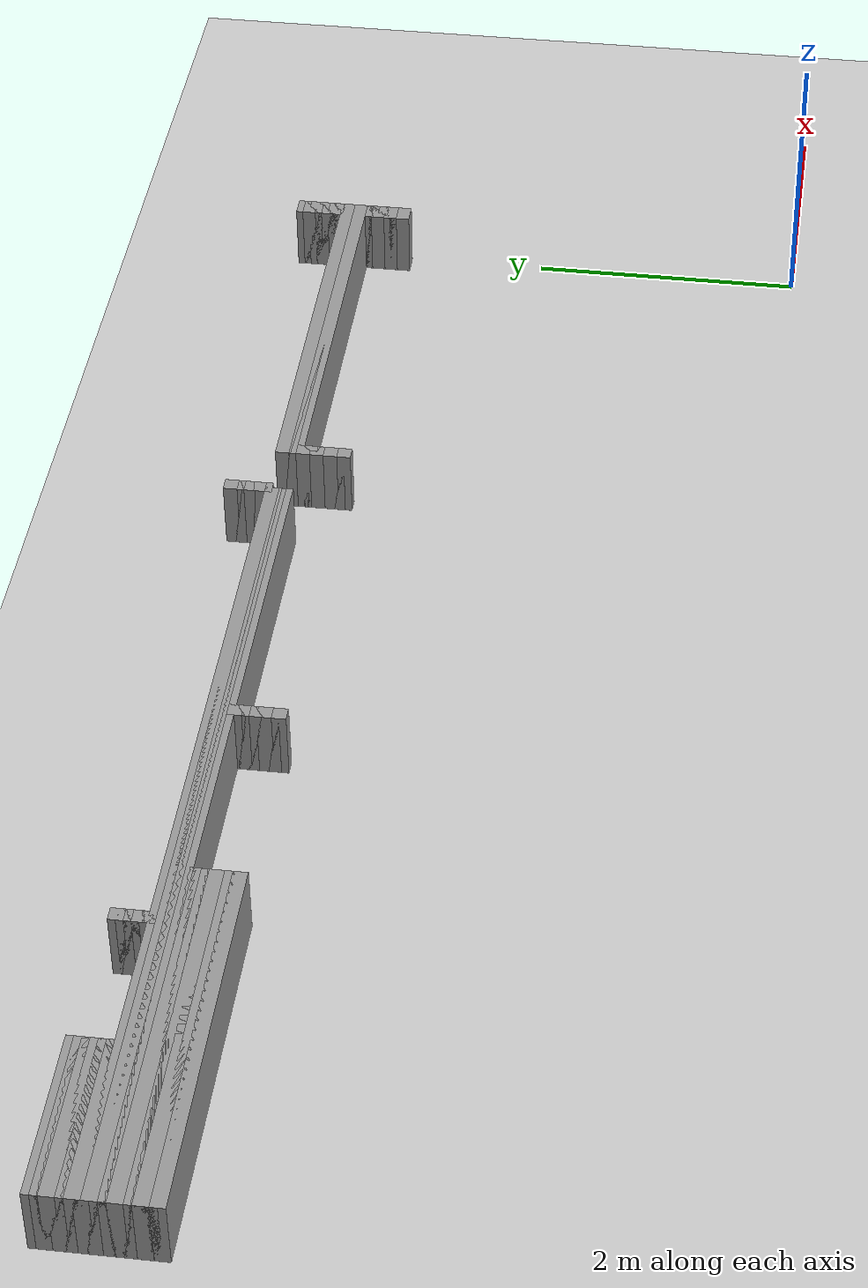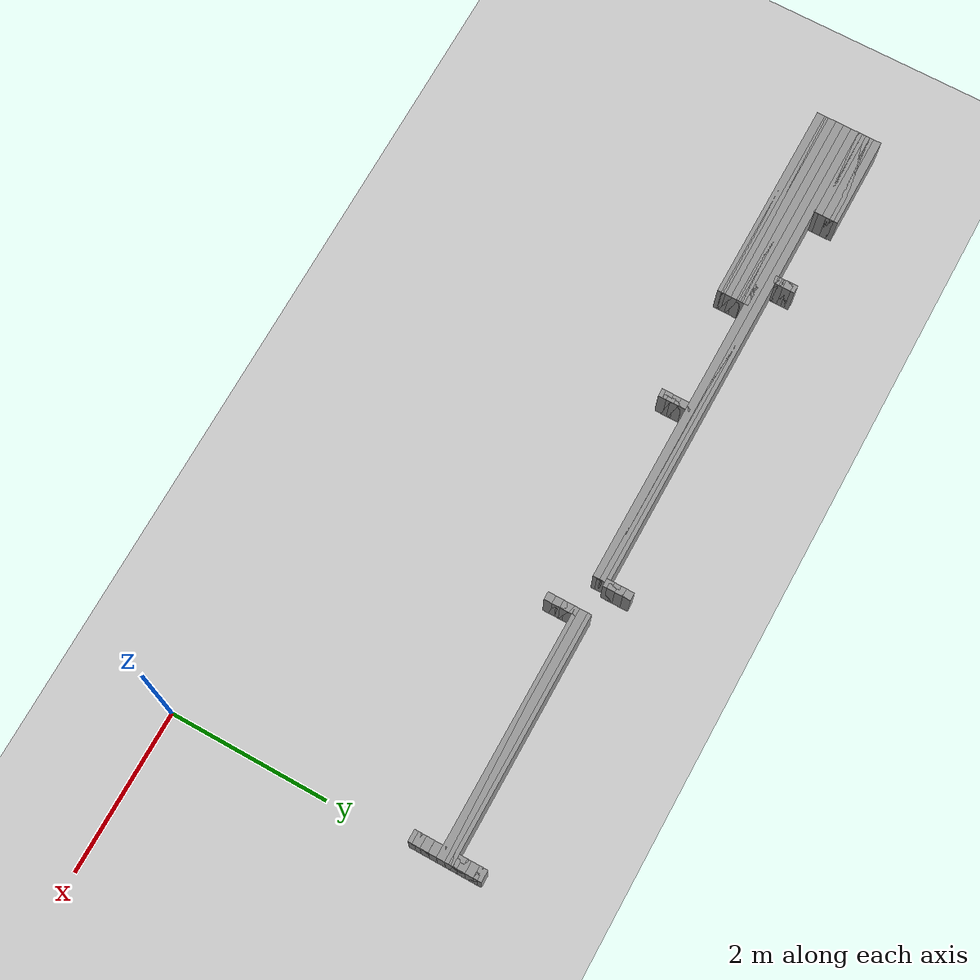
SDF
<sdf version="1.6">
 <world name="GridMap">
  <include><uri>model://sun</uri></include>
  <include><uri>model://ground_plane</uri></include>
  <model name="GridMap">
   <link name="Wall_(1.5,62.0)">
    <collision name="Wall_(1.5,62.0)_Collision">
     <geometry><box><size>0.15000000000000002 0.1 0.5</size></box></geometry>
     <pose>-0.07500000000000001 3.1 0.25 0 -0 0</pose>
    </collision>
    <inertial>
     <mass>0.5</mass>
     <pose>0 0.01 0 0 0 0</pose>
     <inertia><ixx>0.004</ixx><ixy>0.001</ixy><ixz>0</ixz><iyy>0.006</iyy><iyz>0</iyz><izz>0.007</izz></inertia>
    </inertial>
    <visual name="Wall_(1.5,62.0)_Visual">
     <geometry><box><size>0.15000000000000002 0.1 0.5</size></box></geometry>
     <pose>-0.07500000000000001 3.1 0.25 0 -0 0</pose>
     <material>
      <script><uri>file://media/materials/scripts/gazebo.material</uri><name>Gazebo/Grey</name></script>
      <ambient>1 1 1 1</ambient>
     </material>
     <meta><layer>0</layer></meta>
    </visual>
   </link>
   <link name="Wall_(62.0,62.0)">
    <collision name="Wall_(62.0,62.0)_Collision">
     <geometry><box><size>0.1 0.1 0.5</size></box></geometry>
     <pose>-3.1 3.1 0.25 0 -0 0</pose>
    </collision>
    <inertial>
     <mass>0.5</mass>
     <pose>0 0.01 0 0 0 0</pose>
     <inertia><ixx>0.004</ixx><ixy>0.001</ixy><ixz>0</ixz><iyy>0.006</iyy><iyz>0</iyz><izz>0.007</izz></inertia>
    </inertial>
    <visual name="Wall_(62.0,62.0)_Visual">
     <geometry><box><size>0.1 0.1 0.5</size></box></geometry>
     <pose>-3.1 3.1 0.25 0 -0 0</pose>
     <material>
      <script><uri>file://media/materials/scripts/gazebo.material</uri><name>Gazebo/Grey</name></script>
      <ambient>1 1 1 1</ambient>
     </material>
     <meta><layer>0</layer></meta>
    </visual>
   </link>
   <link name="Wall_(117.0,62.0)">
    <collision name="Wall_(117.0,62.0)_Collision">
     <geometry><box><size>0.1 0.1 0.5</size></box></geometry>
     <pose>-5.8500000000000005 3.1 0.25 0 -0 0</pose>
    </collision>
    <inertial>
     <mass>0.5</mass>
     <pose>0 0.01 0 0 0 0</pose>
     <inertia><ixx>0.004</ixx><ixy>0.001</ixy><ixz>0</ixz><iyy>0.006</iyy><iyz>0</iyz><izz>0.007</izz></inertia>
    </inertial>
    <visual name="Wall_(117.0,62.0)_Visual">
     <geometry><box><size>0.1 0.1 0.5</size></box></geometry>
     <pose>-5.8500000000000005 3.1 0.25 0 -0 0</pose>
     <material>
      <script><uri>file://media/materials/scripts/gazebo.material</uri><name>Gazebo/Grey</name></script>
      <ambient>1 1 1 1</ambient>
     </material>
     <meta><layer>0</layer></meta>
    </visual>
   </link>
   <link name="Wall_(172.5,62.0)">
    <collision name="Wall_(172.5,62.0)_Collision">
     <geometry><box><size>2.6500000000000004 0.1 0.5</size></box></geometry>
     <pose>-8.625 3.1 0.25 0 -0 0</pose>
    </collision>
    <inertial>
     <mass>0.5</mass>
     <pose>0 0.01 0 0 0 0</pose>
     <inertia><ixx>0.004</ixx><ixy>0.001</ixy><ixz>0</ixz><iyy>0.006</iyy><iyz>0</iyz><izz>0.007</izz></inertia>
    </inertial>
    <visual name="Wall_(172.5,62.0)_Visual">
     <geometry><box><size>2.6500000000000004 0.1 0.5</size></box></geometry>
     <pose>-8.625 3.1 0.25 0 -0 0</pose>
     <material>
      <script><uri>file://media/materials/scripts/gazebo.material</uri><name>Gazebo/Grey</name></script>
      <ambient>1 1 1 1</ambient>
     </material>
     <meta><layer>0</layer></meta>
    </visual>
   </link>
   <link name="Wall_(1.5,63.0)">
    <collision name="Wall_(1.5,63.0)_Collision">
     <geometry><box><size>0.15000000000000002 0.1 0.5</size></box></geometry>
     <pose>-0.07500000000000001 3.1500000000000004 0.25 0 -0 0</pose>
    </collision>
    <inertial>
     <mass>0.5</mass>
     <pose>0 0.01 0 0 0 0</pose>
     <inertia><ixx>0.004</ixx><ixy>0.001</ixy><ixz>0</ixz><iyy>0.006</iyy><iyz>0</iyz><izz>0.007</izz></inertia>
    </inertial>
    <visual name="Wall_(1.5,63.0)_Visual">
     <geometry><box><size>0.15000000000000002 0.1 0.5</size></box></geometry>
     <pose>-0.07500000000000001 3.1500000000000004 0.25 0 -0 0</pose>
     <material>
      <script><uri>file://media/materials/scripts/gazebo.material</uri><name>Gazebo/Grey</name></script>
      <ambient>1 1 1 1</ambient>
     </material>
     <meta><layer>0</layer></meta>
    </visual>
   </link>
   <link name="Wall_(62.0,63.0)">
    <collision name="Wall_(62.0,63.0)_Collision">
     <geometry><box><size>0.1 0.1 0.5</size></box></geometry>
     <pose>-3.1 3.1500000000000004 0.25 0 -0 0</pose>
    </collision>
    <inertial>
     <mass>0.5</mass>
     <pose>0 0.01 0 0 0 0</pose>
     <inertia><ixx>0.004</ixx><ixy>0.001</ixy><ixz>0</ixz><iyy>0.006</iyy><iyz>0</iyz><izz>0.007</izz></inertia>
    </inertial>
    <visual name="Wall_(62.0,63.0)_Visual">
     <geometry><box><size>0.1 0.1 0.5</size></box></geometry>
     <pose>-3.1 3.1500000000000004 0.25 0 -0 0</pose>
     <material>
      <script><uri>file://media/materials/scripts/gazebo.material</uri><name>Gazebo/Grey</name></script>
      <ambient>1 1 1 1</ambient>
     </material>
     <meta><layer>0</layer></meta>
    </visual>
   </link>
   <link name="Wall_(117.0,63.0)">
    <collision name="Wall_(117.0,63.0)_Collision">
     <geometry><box><size>0.1 0.1 0.5</size></box></geometry>
     <pose>-5.8500000000000005 3.1500000000000004 0.25 0 -0 0</pose>
    </collision>
    <inertial>
     <mass>0.5</mass>
     <pose>0 0.01 0 0 0 0</pose>
     <inertia><ixx>0.004</ixx><ixy>0.001</ixy><ixz>0</ixz><iyy>0.006</iyy><iyz>0</iyz><izz>0.007</izz></inertia>
    </inertial>
    <visual name="Wall_(117.0,63.0)_Visual">
     <geometry><box><size>0.1 0.1 0.5</size></box></geometry>
     <pose>-5.8500000000000005 3.1500000000000004 0.25 0 -0 0</pose>
     <material>
      <script><uri>file://media/materials/scripts/gazebo.material</uri><name>Gazebo/Grey</name></script>
      <ambient>1 1 1 1</ambient>
     </material>
     <meta><layer>0</layer></meta>
    </visual>
   </link>
   <link name="Wall_(172.5,63.0)">
    <collision name="Wall_(172.5,63.0)_Collision">
     <geometry><box><size>2.6500000000000004 0.1 0.5</size></box></geometry>
     <pose>-8.625 3.1500000000000004 0.25 0 -0 0</pose>
    </collision>
    <inertial>
     <mass>0.5</mass>
     <pose>0 0.01 0 0 0 0</pose>
     <inertia><ixx>0.004</ixx><ixy>0.001</ixy><ixz>0</ixz><iyy>0.006</iyy><iyz>0</iyz><izz>0.007</izz></inertia>
    </inertial>
    <visual name="Wall_(172.5,63.0)_Visual">
     <geometry><box><size>2.6500000000000004 0.1 0.5</size></box></geometry>
     <pose>-8.625 3.1500000000000004 0.25 0 -0 0</pose>
     <material>
      <script><uri>file://media/materials/scripts/gazebo.material</uri><name>Gazebo/Grey</name></script>
      <ambient>1 1 1 1</ambient>
     </material>
     <meta><layer>0</layer></meta>
    </visual>
   </link>
   <link name="Wall_(1.5,64.0)">
    <collision name="Wall_(1.5,64.0)_Collision">
     <geometry><box><size>0.15000000000000002 0.1 0.5</size></box></geometry>
     <pose>-0.07500000000000001 3.2 0.25 0 -0 0</pose>
    </collision>
    <inertial>
     <mass>0.5</mass>
     <pose>0 0.01 0 0 0 0</pose>
     <inertia><ixx>0.004</ixx><ixy>0.001</ixy><ixz>0</ixz><iyy>0.006</iyy><iyz>0</iyz><izz>0.007</izz></inertia>
    </inertial>
    <visual name="Wall_(1.5,64.0)_Visual">
     <geometry><box><size>0.15000000000000002 0.1 0.5</size></box></geometry>
     <pose>-0.07500000000000001 3.2 0.25 0 -0 0</pose>
     <material>
      <script><uri>file://media/materials/scripts/gazebo.material</uri><name>Gazebo/Grey</name></script>
      <ambient>1 1 1 1</ambient>
     </material>
     <meta><layer>0</layer></meta>
    </visual>
   </link>
   <link name="Wall_(62.0,64.0)">
    <collision name="Wall_(62.0,64.0)_Collision">
     <geometry><box><size>0.1 0.1 0.5</size></box></geometry>
     <pose>-3.1 3.2 0.25 0 -0 0</pose>
    </collision>
    <inertial>
     <mass>0.5</mass>
     <pose>0 0.01 0 0 0 0</pose>
     <inertia><ixx>0.004</ixx><ixy>0.001</ixy><ixz>0</ixz><iyy>0.006</iyy><iyz>0</iyz><izz>0.007</izz></inertia>
    </inertial>
    <visual name="Wall_(62.0,64.0)_Visual">
     <geometry><box><size>0.1 0.1 0.5</size></box></geometry>
     <pose>-3.1 3.2 0.25 0 -0 0</pose>
     <material>
      <script><uri>file://media/materials/scripts/gazebo.material</uri><name>Gazebo/Grey</name></script>
      <ambient>1 1 1 1</ambient>
     </material>
     <meta><layer>0</layer></meta>
    </visual>
   </link>
   <link name="Wall_(117.0,64.0)">
    <collision name="Wall_(117.0,64.0)_Collision">
     <geometry><box><size>0.1 0.1 0.5</size></box></geometry>
     <pose>-5.8500000000000005 3.2 0.25 0 -0 0</pose>
    </collision>
    <inertial>
     <mass>0.5</mass>
     <pose>0 0.01 0 0 0 0</pose>
     <inertia><ixx>0.004</ixx><ixy>0.001</ixy><ixz>0</ixz><iyy>0.006</iyy><iyz>0</iyz><izz>0.007</izz></inertia>
    </inertial>
    <visual name="Wall_(117.0,64.0)_Visual">
     <geometry><box><size>0.1 0.1 0.5</size></box></geometry>
     <pose>-5.8500000000000005 3.2 0.25 0 -0 0</pose>
     <material>
      <script><uri>file://media/materials/scripts/gazebo.material</uri><name>Gazebo/Grey</name></script>
      <ambient>1 1 1 1</ambient>
     </material>
     <meta><layer>0</layer></meta>
    </visual>
   </link>
   <link name="Wall_(172.5,64.0)">
    <collision name="Wall_(172.5,64.0)_Collision">
     <geometry><box><size>2.6500000000000004 0.1 0.5</size></box></geometry>
     <pose>-8.625 3.2 0.25 0 -0 0</pose>
    </collision>
    <inertial>
     <mass>0.5</mass>
     <pose>0 0.01 0 0 0 0</pose>
     <inertia><ixx>0.004</ixx><ixy>0.001</ixy><ixz>0</ixz><iyy>0.006</iyy><iyz>0</iyz><izz>0.007</izz></inertia>
    </inertial>
    <visual name="Wall_(172.5,64.0)_Visual">
     <geometry><box><size>2.6500000000000004 0.1 0.5</size></box></geometry>
     <pose>-8.625 3.2 0.25 0 -0 0</pose>
     <material>
      <script><uri>file://media/materials/scripts/gazebo.material</uri><name>Gazebo/Grey</name></script>
      <ambient>1 1 1 1</ambient>
     </material>
     <meta><layer>0</layer></meta>
    </visual>
   </link>
   <link name="Wall_(1.5,65.0)">
    <collision name="Wall_(1.5,65.0)_Collision">
     <geometry><box><size>0.15000000000000002 0.1 0.5</size></box></geometry>
     <pose>-0.07500000000000001 3.25 0.25 0 -0 0</pose>
    </collision>
    <inertial>
     <mass>0.5</mass>
     <pose>0 0.01 0 0 0 0</pose>
     <inertia><ixx>0.004</ixx><ixy>0.001</ixy><ixz>0</ixz><iyy>0.006</iyy><iyz>0</iyz><izz>0.007</izz></inertia>
    </inertial>
    <visual name="Wall_(1.5,65.0)_Visual">
     <geometry><box><size>0.15000000000000002 0.1 0.5</size></box></geometry>
     <pose>-0.07500000000000001 3.25 0.25 0 -0 0</pose>
     <material>
      <script><uri>file://media/materials/scripts/gazebo.material</uri><name>Gazebo/Grey</name></script>
      <ambient>1 1 1 1</ambient>
     </material>
     <meta><layer>0</layer></meta>
    </visual>
   </link>
   <link name="Wall_(62.0,65.0)">
    <collision name="Wall_(62.0,65.0)_Collision">
     <geometry><box><size>0.1 0.1 0.5</size></box></geometry>
     <pose>-3.1 3.25 0.25 0 -0 0</pose>
    </collision>
    <inertial>
     <mass>0.5</mass>
     <pose>0 0.01 0 0 0 0</pose>
     <inertia><ixx>0.004</ixx><ixy>0.001</ixy><ixz>0</ixz><iyy>0.006</iyy><iyz>0</iyz><izz>0.007</izz></inertia>
    </inertial>
    <visual name="Wall_(62.0,65.0)_Visual">
     <geometry><box><size>0.1 0.1 0.5</size></box></geometry>
     <pose>-3.1 3.25 0.25 0 -0 0</pose>
     <material>
      <script><uri>file://media/materials/scripts/gazebo.material</uri><name>Gazebo/Grey</name></script>
      <ambient>1 1 1 1</ambient>
     </material>
     <meta><layer>0</layer></meta>
    </visual>
   </link>
   <link name="Wall_(117.0,65.0)">
    <collision name="Wall_(117.0,65.0)_Collision">
     <geometry><box><size>0.1 0.1 0.5</size></box></geometry>
     <pose>-5.8500000000000005 3.25 0.25 0 -0 0</pose>
    </collision>
    <inertial>
     <mass>0.5</mass>
     <pose>0 0.01 0 0 0 0</pose>
     <inertia><ixx>0.004</ixx><ixy>0.001</ixy><ixz>0</ixz><iyy>0.006</iyy><iyz>0</iyz><izz>0.007</izz></inertia>
    </inertial>
    <visual name="Wall_(117.0,65.0)_Visual">
     <geometry><box><size>0.1 0.1 0.5</size></box></geometry>
     <pose>-5.8500000000000005 3.25 0.25 0 -0 0</pose>
     <material>
      <script><uri>file://media/materials/scripts/gazebo.material</uri><name>Gazebo/Grey</name></script>
      <ambient>1 1 1 1</ambient>
     </material>
     <meta><layer>0</layer></meta>
    </visual>
   </link>
   <link name="Wall_(172.5,65.0)">
    <collision name="Wall_(172.5,65.0)_Collision">
     <geometry><box><size>2.6500000000000004 0.1 0.5</size></box></geometry>
     <pose>-8.625 3.25 0.25 0 -0 0</pose>
    </collision>
    <inertial>
     <mass>0.5</mass>
     <pose>0 0.01 0 0 0 0</pose>
     <inertia><ixx>0.004</ixx><ixy>0.001</ixy><ixz>0</ixz><iyy>0.006</iyy><iyz>0</iyz><izz>0.007</izz></inertia>
    </inertial>
    <visual name="Wall_(172.5,65.0)_Visual">
     <geometry><box><size>2.6500000000000004 0.1 0.5</size></box></geometry>
     <pose>-8.625 3.25 0.25 0 -0 0</pose>
     <material>
      <script><uri>file://media/materials/scripts/gazebo.material</uri><name>Gazebo/Grey</name></script>
      <ambient>1 1 1 1</ambient>
     </material>
     <meta><layer>0</layer></meta>
    </visual>
   </link>
   <link name="Wall_(1.5,66.0)">
    <collision name="Wall_(1.5,66.0)_Collision">
     <geometry><box><size>0.15000000000000002 0.1 0.5</size></box></geometry>
     <pose>-0.07500000000000001 3.3000000000000003 0.25 0 -0 0</pose>
    </collision>
    <inertial>
     <mass>0.5</mass>
     <pose>0 0.01 0 0 0 0</pose>
     <inertia><ixx>0.004</ixx><ixy>0.001</ixy><ixz>0</ixz><iyy>0.006</iyy><iyz>0</iyz><izz>0.007</izz></inertia>
    </inertial>
    <visual name="Wall_(1.5,66.0)_Visual">
     <geometry><box><size>0.15000000000000002 0.1 0.5</size></box></geometry>
     <pose>-0.07500000000000001 3.3000000000000003 0.25 0 -0 0</pose>
     <material>
      <script><uri>file://media/materials/scripts/gazebo.material</uri><name>Gazebo/Grey</name></script>
      <ambient>1 1 1 1</ambient>
     </material>
     <meta><layer>0</layer></meta>
    </visual>
   </link>
   <link name="Wall_(62.0,66.0)">
    <collision name="Wall_(62.0,66.0)_Collision">
     <geometry><box><size>0.1 0.1 0.5</size></box></geometry>
     <pose>-3.1 3.3000000000000003 0.25 0 -0 0</pose>
    </collision>
    <inertial>
     <mass>0.5</mass>
     <pose>0 0.01 0 0 0 0</pose>
     <inertia><ixx>0.004</ixx><ixy>0.001</ixy><ixz>0</ixz><iyy>0.006</iyy><iyz>0</iyz><izz>0.007</izz></inertia>
    </inertial>
    <visual name="Wall_(62.0,66.0)_Visual">
     <geometry><box><size>0.1 0.1 0.5</size></box></geometry>
     <pose>-3.1 3.3000000000000003 0.25 0 -0 0</pose>
     <material>
      <script><uri>file://media/materials/scripts/gazebo.material</uri><name>Gazebo/Grey</name></script>
      <ambient>1 1 1 1</ambient>
     </material>
     <meta><layer>0</layer></meta>
    </visual>
   </link>
   <link name="Wall_(117.0,66.0)">
    <collision name="Wall_(117.0,66.0)_Collision">
     <geometry><box><size>0.1 0.1 0.5</size></box></geometry>
     <pose>-5.8500000000000005 3.3000000000000003 0.25 0 -0 0</pose>
    </collision>
    <inertial>
     <mass>0.5</mass>
     <pose>0 0.01 0 0 0 0</pose>
     <inertia><ixx>0.004</ixx><ixy>0.001</ixy><ixz>0</ixz><iyy>0.006</iyy><iyz>0</iyz><izz>0.007</izz></inertia>
    </inertial>
    <visual name="Wall_(117.0,66.0)_Visual">
     <geometry><box><size>0.1 0.1 0.5</size></box></geometry>
     <pose>-5.8500000000000005 3.3000000000000003 0.25 0 -0 0</pose>
     <material>
      <script><uri>file://media/materials/scripts/gazebo.material</uri><name>Gazebo/Grey</name></script>
      <ambient>1 1 1 1</ambient>
     </material>
     <meta><layer>0</layer></meta>
    </visual>
   </link>
   <link name="Wall_(172.5,66.0)">
    <collision name="Wall_(172.5,66.0)_Collision">
     <geometry><box><size>2.6500000000000004 0.1 0.5</size></box></geometry>
     <pose>-8.625 3.3000000000000003 0.25 0 -0 0</pose>
    </collision>
    <inertial>
     <mass>0.5</mass>
     <pose>0 0.01 0 0 0 0</pose>
     <inertia><ixx>0.004</ixx><ixy>0.001</ixy><ixz>0</ixz><iyy>0.006</iyy><iyz>0</iyz><izz>0.007</izz></inertia>
    </inertial>
    <visual name="Wall_(172.5,66.0)_Visual">
     <geometry><box><size>2.6500000000000004 0.1 0.5</size></box></geometry>
     <pose>-8.625 3.3000000000000003 0.25 0 -0 0</pose>
     <material>
      <script><uri>file://media/materials/scripts/gazebo.material</uri><name>Gazebo/Grey</name></script>
      <ambient>1 1 1 1</ambient>
     </material>
     <meta><layer>0</layer></meta>
    </visual>
   </link>
   <link name="Wall_(1.5,67.0)">
    <collision name="Wall_(1.5,67.0)_Collision">
     <geometry><box><size>0.15000000000000002 0.1 0.5</size></box></geometry>
     <pose>-0.07500000000000001 3.35 0.25 0 -0 0</pose>
    </collision>
    <inertial>
     <mass>0.5</mass>
     <pose>0 0.01 0 0 0 0</pose>
     <inertia><ixx>0.004</ixx><ixy>0.001</ixy><ixz>0</ixz><iyy>0.006</iyy><iyz>0</iyz><izz>0.007</izz></inertia>
    </inertial>
    <visual name="Wall_(1.5,67.0)_Visual">
     <geometry><box><size>0.15000000000000002 0.1 0.5</size></box></geometry>
     <pose>-0.07500000000000001 3.35 0.25 0 -0 0</pose>
     <material>
      <script><uri>file://media/materials/scripts/gazebo.material</uri><name>Gazebo/Grey</name></script>
      <ambient>1 1 1 1</ambient>
     </material>
     <meta><layer>0</layer></meta>
    </visual>
   </link>
   <link name="Wall_(62.0,67.0)">
    <collision name="Wall_(62.0,67.0)_Collision">
     <geometry><box><size>0.1 0.1 0.5</size></box></geometry>
     <pose>-3.1 3.35 0.25 0 -0 0</pose>
    </collision>
    <inertial>
     <mass>0.5</mass>
     <pose>0 0.01 0 0 0 0</pose>
     <inertia><ixx>0.004</ixx><ixy>0.001</ixy><ixz>0</ixz><iyy>0.006</iyy><iyz>0</iyz><izz>0.007</izz></inertia>
    </inertial>
    <visual name="Wall_(62.0,67.0)_Visual">
     <geometry><box><size>0.1 0.1 0.5</size></box></geometry>
     <pose>-3.1 3.35 0.25 0 -0 0</pose>
     <material>
      <script><uri>file://media/materials/scripts/gazebo.material</uri><name>Gazebo/Grey</name></script>
      <ambient>1 1 1 1</ambient>
     </material>
     <meta><layer>0</layer></meta>
    </visual>
   </link>
   <link name="Wall_(117.0,67.0)">
    <collision name="Wall_(117.0,67.0)_Collision">
     <geometry><box><size>0.1 0.1 0.5</size></box></geometry>
     <pose>-5.8500000000000005 3.35 0.25 0 -0 0</pose>
    </collision>
    <inertial>
     <mass>0.5</mass>
     <pose>0 0.01 0 0 0 0</pose>
     <inertia><ixx>0.004</ixx><ixy>0.001</ixy><ixz>0</ixz><iyy>0.006</iyy><iyz>0</iyz><izz>0.007</izz></inertia>
    </inertial>
    <visual name="Wall_(117.0,67.0)_Visual">
     <geometry><box><size>0.1 0.1 0.5</size></box></geometry>
     <pose>-5.8500000000000005 3.35 0.25 0 -0 0</pose>
     <material>
      <script><uri>file://media/materials/scripts/gazebo.material</uri><name>Gazebo/Grey</name></script>
      <ambient>1 1 1 1</ambient>
     </material>
     <meta><layer>0</layer></meta>
    </visual>
   </link>
   <link name="Wall_(172.5,67.0)">
    <collision name="Wall_(172.5,67.0)_Collision">
     <geometry><box><size>2.6500000000000004 0.1 0.5</size></box></geometry>
     <pose>-8.625 3.35 0.25 0 -0 0</pose>
    </collision>
    <inertial>
     <mass>0.5</mass>
     <pose>0 0.01 0 0 0 0</pose>
     <inertia><ixx>0.004</ixx><ixy>0.001</ixy><ixz>0</ixz><iyy>0.006</iyy><iyz>0</iyz><izz>0.007</izz></inertia>
    </inertial>
    <visual name="Wall_(172.5,67.0)_Visual">
     <geometry><box><size>2.6500000000000004 0.1 0.5</size></box></geometry>
     <pose>-8.625 3.35 0.25 0 -0 0</pose>
     <material>
      <script><uri>file://media/materials/scripts/gazebo.material</uri><name>Gazebo/Grey</name></script>
      <ambient>1 1 1 1</ambient>
     </material>
     <meta><layer>0</layer></meta>
    </visual>
   </link>
   <link name="Wall_(1.5,68.0)">
    <collision name="Wall_(1.5,68.0)_Collision">
     <geometry><box><size>0.15000000000000002 0.1 0.5</size></box></geometry>
     <pose>-0.07500000000000001 3.4000000000000004 0.25 0 -0 0</pose>
    </collision>
    <inertial>
     <mass>0.5</mass>
     <pose>0 0.01 0 0 0 0</pose>
     <inertia><ixx>0.004</ixx><ixy>0.001</ixy><ixz>0</ixz><iyy>0.006</iyy><iyz>0</iyz><izz>0.007</izz></inertia>
    </inertial>
    <visual name="Wall_(1.5,68.0)_Visual">
     <geometry><box><size>0.15000000000000002 0.1 0.5</size></box></geometry>
     <pose>-0.07500000000000001 3.4000000000000004 0.25 0 -0 0</pose>
     <material>
      <script><uri>file://media/materials/scripts/gazebo.material</uri><name>Gazebo/Grey</name></script>
      <ambient>1 1 1 1</ambient>
     </material>
     <meta><layer>0</layer></meta>
    </visual>
   </link>
   <link name="Wall_(62.0,68.0)">
    <collision name="Wall_(62.0,68.0)_Collision">
     <geometry><box><size>0.1 0.1 0.5</size></box></geometry>
     <pose>-3.1 3.4000000000000004 0.25 0 -0 0</pose>
    </collision>
    <inertial>
     <mass>0.5</mass>
     <pose>0 0.01 0 0 0 0</pose>
     <inertia><ixx>0.004</ixx><ixy>0.001</ixy><ixz>0</ixz><iyy>0.006</iyy><iyz>0</iyz><izz>0.007</izz></inertia>
    </inertial>
    <visual name="Wall_(62.0,68.0)_Visual">
     <geometry><box><size>0.1 0.1 0.5</size></box></geometry>
     <pose>-3.1 3.4000000000000004 0.25 0 -0 0</pose>
     <material>
      <script><uri>file://media/materials/scripts/gazebo.material</uri><name>Gazebo/Grey</name></script>
      <ambient>1 1 1 1</ambient>
     </material>
     <meta><layer>0</layer></meta>
    </visual>
   </link>
   <link name="Wall_(117.0,68.0)">
    <collision name="Wall_(117.0,68.0)_Collision">
     <geometry><box><size>0.1 0.1 0.5</size></box></geometry>
     <pose>-5.8500000000000005 3.4000000000000004 0.25 0 -0 0</pose>
    </collision>
    <inertial>
     <mass>0.5</mass>
     <pose>0 0.01 0 0 0 0</pose>
     <inertia><ixx>0.004</ixx><ixy>0.001</ixy><ixz>0</ixz><iyy>0.006</iyy><iyz>0</iyz><izz>0.007</izz></inertia>
    </inertial>
    <visual name="Wall_(117.0,68.0)_Visual">
     <geometry><box><size>0.1 0.1 0.5</size></box></geometry>
     <pose>-5.8500000000000005 3.4000000000000004 0.25 0 -0 0</pose>
     <material>
      <script><uri>file://media/materials/scripts/gazebo.material</uri><name>Gazebo/Grey</name></script>
      <ambient>1 1 1 1</ambient>
     </material>
     <meta><layer>0</layer></meta>
    </visual>
   </link>
   <link name="Wall_(172.5,68.0)">
    <collision name="Wall_(172.5,68.0)_Collision">
     <geometry><box><size>2.6500000000000004 0.1 0.5</size></box></geometry>
     <pose>-8.625 3.4000000000000004 0.25 0 -0 0</pose>
    </collision>
    <inertial>
     <mass>0.5</mass>
     <pose>0 0.01 0 0 0 0</pose>
     <inertia><ixx>0.004</ixx><ixy>0.001</ixy><ixz>0</ixz><iyy>0.006</iyy><iyz>0</iyz><izz>0.007</izz></inertia>
    </inertial>
    <visual name="Wall_(172.5,68.0)_Visual">
     <geometry><box><size>2.6500000000000004 0.1 0.5</size></box></geometry>
     <pose>-8.625 3.4000000000000004 0.25 0 -0 0</pose>
     <material>
      <script><uri>file://media/materials/scripts/gazebo.material</uri><name>Gazebo/Grey</name></script>
      <ambient>1 1 1 1</ambient>
     </material>
     <meta><layer>0</layer></meta>
    </visual>
   </link>
   <link name="Wall_(31.5,69.0)">
    <collision name="Wall_(31.5,69.0)_Collision">
     <geometry><box><size>3.1500000000000004 0.1 0.5</size></box></geometry>
     <pose>-1.5750000000000002 3.45 0.25 0 -0 0</pose>
    </collision>
    <inertial>
     <mass>0.5</mass>
     <pose>0 0.01 0 0 0 0</pose>
     <inertia><ixx>0.004</ixx><ixy>0.001</ixy><ixz>0</ixz><iyy>0.006</iyy><iyz>0</iyz><izz>0.007</izz></inertia>
    </inertial>
    <visual name="Wall_(31.5,69.0)_Visual">
     <geometry><box><size>3.1500000000000004 0.1 0.5</size></box></geometry>
     <pose>-1.5750000000000002 3.45 0.25 0 -0 0</pose>
     <material>
      <script><uri>file://media/materials/scripts/gazebo.material</uri><name>Gazebo/Grey</name></script>
      <ambient>1 1 1 1</ambient>
     </material>
     <meta><layer>0</layer></meta>
    </visual>
   </link>
   <link name="Wall_(135.0,69.0)">
    <collision name="Wall_(135.0,69.0)_Collision">
     <geometry><box><size>6.4 0.1 0.5</size></box></geometry>
     <pose>-6.75 3.45 0.25 0 -0 0</pose>
    </collision>
    <inertial>
     <mass>0.5</mass>
     <pose>0 0.01 0 0 0 0</pose>
     <inertia><ixx>0.004</ixx><ixy>0.001</ixy><ixz>0</ixz><iyy>0.006</iyy><iyz>0</iyz><izz>0.007</izz></inertia>
    </inertial>
    <visual name="Wall_(135.0,69.0)_Visual">
     <geometry><box><size>6.4 0.1 0.5</size></box></geometry>
     <pose>-6.75 3.45 0.25 0 -0 0</pose>
     <material>
      <script><uri>file://media/materials/scripts/gazebo.material</uri><name>Gazebo/Grey</name></script>
      <ambient>1 1 1 1</ambient>
     </material>
     <meta><layer>0</layer></meta>
    </visual>
   </link>
   <link name="Wall_(31.5,70.0)">
    <collision name="Wall_(31.5,70.0)_Collision">
     <geometry><box><size>3.1500000000000004 0.1 0.5</size></box></geometry>
     <pose>-1.5750000000000002 3.5 0.25 0 -0 0</pose>
    </collision>
    <inertial>
     <mass>0.5</mass>
     <pose>0 0.01 0 0 0 0</pose>
     <inertia><ixx>0.004</ixx><ixy>0.001</ixy><ixz>0</ixz><iyy>0.006</iyy><iyz>0</iyz><izz>0.007</izz></inertia>
    </inertial>
    <visual name="Wall_(31.5,70.0)_Visual">
     <geometry><box><size>3.1500000000000004 0.1 0.5</size></box></geometry>
     <pose>-1.5750000000000002 3.5 0.25 0 -0 0</pose>
     <material>
      <script><uri>file://media/materials/scripts/gazebo.material</uri><name>Gazebo/Grey</name></script>
      <ambient>1 1 1 1</ambient>
     </material>
     <meta><layer>0</layer></meta>
    </visual>
   </link>
   <link name="Wall_(135.0,70.0)">
    <collision name="Wall_(135.0,70.0)_Collision">
     <geometry><box><size>6.4 0.1 0.5</size></box></geometry>
     <pose>-6.75 3.5 0.25 0 -0 0</pose>
    </collision>
    <inertial>
     <mass>0.5</mass>
     <pose>0 0.01 0 0 0 0</pose>
     <inertia><ixx>0.004</ixx><ixy>0.001</ixy><ixz>0</ixz><iyy>0.006</iyy><iyz>0</iyz><izz>0.007</izz></inertia>
    </inertial>
    <visual name="Wall_(135.0,70.0)_Visual">
     <geometry><box><size>6.4 0.1 0.5</size></box></geometry>
     <pose>-6.75 3.5 0.25 0 -0 0</pose>
     <material>
      <script><uri>file://media/materials/scripts/gazebo.material</uri><name>Gazebo/Grey</name></script>
      <ambient>1 1 1 1</ambient>
     </material>
     <meta><layer>0</layer></meta>
    </visual>
   </link>
   <link name="Wall_(31.5,71.0)">
    <collision name="Wall_(31.5,71.0)_Collision">
     <geometry><box><size>3.1500000000000004 0.1 0.5</size></box></geometry>
     <pose>-1.5750000000000002 3.5500000000000003 0.25 0 -0 0</pose>
    </collision>
    <inertial>
     <mass>0.5</mass>
     <pose>0 0.01 0 0 0 0</pose>
     <inertia><ixx>0.004</ixx><ixy>0.001</ixy><ixz>0</ixz><iyy>0.006</iyy><iyz>0</iyz><izz>0.007</izz></inertia>
    </inertial>
    <visual name="Wall_(31.5,71.0)_Visual">
     <geometry><box><size>3.1500000000000004 0.1 0.5</size></box></geometry>
     <pose>-1.5750000000000002 3.5500000000000003 0.25 0 -0 0</pose>
     <material>
      <script><uri>file://media/materials/scripts/gazebo.material</uri><name>Gazebo/Grey</name></script>
      <ambient>1 1 1 1</ambient>
     </material>
     <meta><layer>0</layer></meta>
    </visual>
   </link>
   <link name="Wall_(135.0,71.0)">
    <collision name="Wall_(135.0,71.0)_Collision">
     <geometry><box><size>6.4 0.1 0.5</size></box></geometry>
     <pose>-6.75 3.5500000000000003 0.25 0 -0 0</pose>
    </collision>
    <inertial>
     <mass>0.5</mass>
     <pose>0 0.01 0 0 0 0</pose>
     <inertia><ixx>0.004</ixx><ixy>0.001</ixy><ixz>0</ixz><iyy>0.006</iyy><iyz>0</iyz><izz>0.007</izz></inertia>
    </inertial>
    <visual name="Wall_(135.0,71.0)_Visual">
     <geometry><box><size>6.4 0.1 0.5</size></box></geometry>
     <pose>-6.75 3.5500000000000003 0.25 0 -0 0</pose>
     <material>
      <script><uri>file://media/materials/scripts/gazebo.material</uri><name>Gazebo/Grey</name></script>
      <ambient>1 1 1 1</ambient>
     </material>
     <meta><layer>0</layer></meta>
    </visual>
   </link>
   <link name="Wall_(1.5,72.0)">
    <collision name="Wall_(1.5,72.0)_Collision">
     <geometry><box><size>0.15000000000000002 0.1 0.5</size></box></geometry>
     <pose>-0.07500000000000001 3.6 0.25 0 -0 0</pose>
    </collision>
    <inertial>
     <mass>0.5</mass>
     <pose>0 0.01 0 0 0 0</pose>
     <inertia><ixx>0.004</ixx><ixy>0.001</ixy><ixz>0</ixz><iyy>0.006</iyy><iyz>0</iyz><izz>0.007</izz></inertia>
    </inertial>
    <visual name="Wall_(1.5,72.0)_Visual">
     <geometry><box><size>0.15000000000000002 0.1 0.5</size></box></geometry>
     <pose>-0.07500000000000001 3.6 0.25 0 -0 0</pose>
     <material>
      <script><uri>file://media/materials/scripts/gazebo.material</uri><name>Gazebo/Grey</name></script>
      <ambient>1 1 1 1</ambient>
     </material>
     <meta><layer>0</layer></meta>
    </visual>
   </link>
   <link name="Wall_(71.0,72.0)">
    <collision name="Wall_(71.0,72.0)_Collision">
     <geometry><box><size>0.1 0.1 0.5</size></box></geometry>
     <pose>-3.5500000000000003 3.6 0.25 0 -0 0</pose>
    </collision>
    <inertial>
     <mass>0.5</mass>
     <pose>0 0.01 0 0 0 0</pose>
     <inertia><ixx>0.004</ixx><ixy>0.001</ixy><ixz>0</ixz><iyy>0.006</iyy><iyz>0</iyz><izz>0.007</izz></inertia>
    </inertial>
    <visual name="Wall_(71.0,72.0)_Visual">
     <geometry><box><size>0.1 0.1 0.5</size></box></geometry>
     <pose>-3.5500000000000003 3.6 0.25 0 -0 0</pose>
     <material>
      <script><uri>file://media/materials/scripts/gazebo.material</uri><name>Gazebo/Grey</name></script>
      <ambient>1 1 1 1</ambient>
     </material>
     <meta><layer>0</layer></meta>
    </visual>
   </link>
   <link name="Wall_(155.0,72.0)">
    <collision name="Wall_(155.0,72.0)_Collision">
     <geometry><box><size>0.1 0.1 0.5</size></box></geometry>
     <pose>-7.75 3.6 0.25 0 -0 0</pose>
    </collision>
    <inertial>
     <mass>0.5</mass>
     <pose>0 0.01 0 0 0 0</pose>
     <inertia><ixx>0.004</ixx><ixy>0.001</ixy><ixz>0</ixz><iyy>0.006</iyy><iyz>0</iyz><izz>0.007</izz></inertia>
    </inertial>
    <visual name="Wall_(155.0,72.0)_Visual">
     <geometry><box><size>0.1 0.1 0.5</size></box></geometry>
     <pose>-7.75 3.6 0.25 0 -0 0</pose>
     <material>
      <script><uri>file://media/materials/scripts/gazebo.material</uri><name>Gazebo/Grey</name></script>
      <ambient>1 1 1 1</ambient>
     </material>
     <meta><layer>0</layer></meta>
    </visual>
   </link>
   <link name="Wall_(187.0,72.0)">
    <collision name="Wall_(187.0,72.0)_Collision">
     <geometry><box><size>1.2000000000000002 0.1 0.5</size></box></geometry>
     <pose>-9.35 3.6 0.25 0 -0 0</pose>
    </collision>
    <inertial>
     <mass>0.5</mass>
     <pose>0 0.01 0 0 0 0</pose>
     <inertia><ixx>0.004</ixx><ixy>0.001</ixy><ixz>0</ixz><iyy>0.006</iyy><iyz>0</iyz><izz>0.007</izz></inertia>
    </inertial>
    <visual name="Wall_(187.0,72.0)_Visual">
     <geometry><box><size>1.2000000000000002 0.1 0.5</size></box></geometry>
     <pose>-9.35 3.6 0.25 0 -0 0</pose>
     <material>
      <script><uri>file://media/materials/scripts/gazebo.material</uri><name>Gazebo/Grey</name></script>
      <ambient>1 1 1 1</ambient>
     </material>
     <meta><layer>0</layer></meta>
    </visual>
   </link>
   <link name="Wall_(1.5,73.0)">
    <collision name="Wall_(1.5,73.0)_Collision">
     <geometry><box><size>0.15000000000000002 0.1 0.5</size></box></geometry>
     <pose>-0.07500000000000001 3.6500000000000004 0.25 0 -0 0</pose>
    </collision>
    <inertial>
     <mass>0.5</mass>
     <pose>0 0.01 0 0 0 0</pose>
     <inertia><ixx>0.004</ixx><ixy>0.001</ixy><ixz>0</ixz><iyy>0.006</iyy><iyz>0</iyz><izz>0.007</izz></inertia>
    </inertial>
    <visual name="Wall_(1.5,73.0)_Visual">
     <geometry><box><size>0.15000000000000002 0.1 0.5</size></box></geometry>
     <pose>-0.07500000000000001 3.6500000000000004 0.25 0 -0 0</pose>
     <material>
      <script><uri>file://media/materials/scripts/gazebo.material</uri><name>Gazebo/Grey</name></script>
      <ambient>1 1 1 1</ambient>
     </material>
     <meta><layer>0</layer></meta>
    </visual>
   </link>
   <link name="Wall_(71.0,73.0)">
    <collision name="Wall_(71.0,73.0)_Collision">
     <geometry><box><size>0.1 0.1 0.5</size></box></geometry>
     <pose>-3.5500000000000003 3.6500000000000004 0.25 0 -0 0</pose>
    </collision>
    <inertial>
     <mass>0.5</mass>
     <pose>0 0.01 0 0 0 0</pose>
     <inertia><ixx>0.004</ixx><ixy>0.001</ixy><ixz>0</ixz><iyy>0.006</iyy><iyz>0</iyz><izz>0.007</izz></inertia>
    </inertial>
    <visual name="Wall_(71.0,73.0)_Visual">
     <geometry><box><size>0.1 0.1 0.5</size></box></geometry>
     <pose>-3.5500000000000003 3.6500000000000004 0.25 0 -0 0</pose>
     <material>
      <script><uri>file://media/materials/scripts/gazebo.material</uri><name>Gazebo/Grey</name></script>
      <ambient>1 1 1 1</ambient>
     </material>
     <meta><layer>0</layer></meta>
    </visual>
   </link>
   <link name="Wall_(155.0,73.0)">
    <collision name="Wall_(155.0,73.0)_Collision">
     <geometry><box><size>0.1 0.1 0.5</size></box></geometry>
     <pose>-7.75 3.6500000000000004 0.25 0 -0 0</pose>
    </collision>
    <inertial>
     <mass>0.5</mass>
     <pose>0 0.01 0 0 0 0</pose>
     <inertia><ixx>0.004</ixx><ixy>0.001</ixy><ixz>0</ixz><iyy>0.006</iyy><iyz>0</iyz><izz>0.007</izz></inertia>
    </inertial>
    <visual name="Wall_(155.0,73.0)_Visual">
     <geometry><box><size>0.1 0.1 0.5</size></box></geometry>
     <pose>-7.75 3.6500000000000004 0.25 0 -0 0</pose>
     <material>
      <script><uri>file://media/materials/scripts/gazebo.material</uri><name>Gazebo/Grey</name></script>
      <ambient>1 1 1 1</ambient>
     </material>
     <meta><layer>0</layer></meta>
    </visual>
   </link>
   <link name="Wall_(187.0,73.0)">
    <collision name="Wall_(187.0,73.0)_Collision">
     <geometry><box><size>1.2000000000000002 0.1 0.5</size></box></geometry>
     <pose>-9.35 3.6500000000000004 0.25 0 -0 0</pose>
    </collision>
    <inertial>
     <mass>0.5</mass>
     <pose>0 0.01 0 0 0 0</pose>
     <inertia><ixx>0.004</ixx><ixy>0.001</ixy><ixz>0</ixz><iyy>0.006</iyy><iyz>0</iyz><izz>0.007</izz></inertia>
    </inertial>
    <visual name="Wall_(187.0,73.0)_Visual">
     <geometry><box><size>1.2000000000000002 0.1 0.5</size></box></geometry>
     <pose>-9.35 3.6500000000000004 0.25 0 -0 0</pose>
     <material>
      <script><uri>file://media/materials/scripts/gazebo.material</uri><name>Gazebo/Grey</name></script>
      <ambient>1 1 1 1</ambient>
     </material>
     <meta><layer>0</layer></meta>
    </visual>
   </link>
   <link name="Wall_(1.5,74.0)">
    <collision name="Wall_(1.5,74.0)_Collision">
     <geometry><box><size>0.15000000000000002 0.1 0.5</size></box></geometry>
     <pose>-0.07500000000000001 3.7 0.25 0 -0 0</pose>
    </collision>
    <inertial>
     <mass>0.5</mass>
     <pose>0 0.01 0 0 0 0</pose>
     <inertia><ixx>0.004</ixx><ixy>0.001</ixy><ixz>0</ixz><iyy>0.006</iyy><iyz>0</iyz><izz>0.007</izz></inertia>
    </inertial>
    <visual name="Wall_(1.5,74.0)_Visual">
     <geometry><box><size>0.15000000000000002 0.1 0.5</size></box></geometry>
     <pose>-0.07500000000000001 3.7 0.25 0 -0 0</pose>
     <material>
      <script><uri>file://media/materials/scripts/gazebo.material</uri><name>Gazebo/Grey</name></script>
      <ambient>1 1 1 1</ambient>
     </material>
     <meta><layer>0</layer></meta>
    </visual>
   </link>
   <link name="Wall_(71.0,74.0)">
    <collision name="Wall_(71.0,74.0)_Collision">
     <geometry><box><size>0.1 0.1 0.5</size></box></geometry>
     <pose>-3.5500000000000003 3.7 0.25 0 -0 0</pose>
    </collision>
    <inertial>
     <mass>0.5</mass>
     <pose>0 0.01 0 0 0 0</pose>
     <inertia><ixx>0.004</ixx><ixy>0.001</ixy><ixz>0</ixz><iyy>0.006</iyy><iyz>0</iyz><izz>0.007</izz></inertia>
    </inertial>
    <visual name="Wall_(71.0,74.0)_Visual">
     <geometry><box><size>0.1 0.1 0.5</size></box></geometry>
     <pose>-3.5500000000000003 3.7 0.25 0 -0 0</pose>
     <material>
      <script><uri>file://media/materials/scripts/gazebo.material</uri><name>Gazebo/Grey</name></script>
      <ambient>1 1 1 1</ambient>
     </material>
     <meta><layer>0</layer></meta>
    </visual>
   </link>
   <link name="Wall_(155.0,74.0)">
    <collision name="Wall_(155.0,74.0)_Collision">
     <geometry><box><size>0.1 0.1 0.5</size></box></geometry>
     <pose>-7.75 3.7 0.25 0 -0 0</pose>
    </collision>
    <inertial>
     <mass>0.5</mass>
     <pose>0 0.01 0 0 0 0</pose>
     <inertia><ixx>0.004</ixx><ixy>0.001</ixy><ixz>0</ixz><iyy>0.006</iyy><iyz>0</iyz><izz>0.007</izz></inertia>
    </inertial>
    <visual name="Wall_(155.0,74.0)_Visual">
     <geometry><box><size>0.1 0.1 0.5</size></box></geometry>
     <pose>-7.75 3.7 0.25 0 -0 0</pose>
     <material>
      <script><uri>file://media/materials/scripts/gazebo.material</uri><name>Gazebo/Grey</name></script>
      <ambient>1 1 1 1</ambient>
     </material>
     <meta><layer>0</layer></meta>
    </visual>
   </link>
   <link name="Wall_(187.0,74.0)">
    <collision name="Wall_(187.0,74.0)_Collision">
     <geometry><box><size>1.2000000000000002 0.1 0.5</size></box></geometry>
     <pose>-9.35 3.7 0.25 0 -0 0</pose>
    </collision>
    <inertial>
     <mass>0.5</mass>
     <pose>0 0.01 0 0 0 0</pose>
     <inertia><ixx>0.004</ixx><ixy>0.001</ixy><ixz>0</ixz><iyy>0.006</iyy><iyz>0</iyz><izz>0.007</izz></inertia>
    </inertial>
    <visual name="Wall_(187.0,74.0)_Visual">
     <geometry><box><size>1.2000000000000002 0.1 0.5</size></box></geometry>
     <pose>-9.35 3.7 0.25 0 -0 0</pose>
     <material>
      <script><uri>file://media/materials/scripts/gazebo.material</uri><name>Gazebo/Grey</name></script>
      <ambient>1 1 1 1</ambient>
     </material>
     <meta><layer>0</layer></meta>
    </visual>
   </link>
   <link name="Wall_(1.5,75.0)">
    <collision name="Wall_(1.5,75.0)_Collision">
     <geometry><box><size>0.15000000000000002 0.1 0.5</size></box></geometry>
     <pose>-0.07500000000000001 3.75 0.25 0 -0 0</pose>
    </collision>
    <inertial>
     <mass>0.5</mass>
     <pose>0 0.01 0 0 0 0</pose>
     <inertia><ixx>0.004</ixx><ixy>0.001</ixy><ixz>0</ixz><iyy>0.006</iyy><iyz>0</iyz><izz>0.007</izz></inertia>
    </inertial>
    <visual name="Wall_(1.5,75.0)_Visual">
     <geometry><box><size>0.15000000000000002 0.1 0.5</size></box></geometry>
     <pose>-0.07500000000000001 3.75 0.25 0 -0 0</pose>
     <material>
      <script><uri>file://media/materials/scripts/gazebo.material</uri><name>Gazebo/Grey</name></script>
      <ambient>1 1 1 1</ambient>
     </material>
     <meta><layer>0</layer></meta>
    </visual>
   </link>
   <link name="Wall_(71.0,75.0)">
    <collision name="Wall_(71.0,75.0)_Collision">
     <geometry><box><size>0.1 0.1 0.5</size></box></geometry>
     <pose>-3.5500000000000003 3.75 0.25 0 -0 0</pose>
    </collision>
    <inertial>
     <mass>0.5</mass>
     <pose>0 0.01 0 0 0 0</pose>
     <inertia><ixx>0.004</ixx><ixy>0.001</ixy><ixz>0</ixz><iyy>0.006</iyy><iyz>0</iyz><izz>0.007</izz></inertia>
    </inertial>
    <visual name="Wall_(71.0,75.0)_Visual">
     <geometry><box><size>0.1 0.1 0.5</size></box></geometry>
     <pose>-3.5500000000000003 3.75 0.25 0 -0 0</pose>
     <material>
      <script><uri>file://media/materials/scripts/gazebo.material</uri><name>Gazebo/Grey</name></script>
      <ambient>1 1 1 1</ambient>
     </material>
     <meta><layer>0</layer></meta>
    </visual>
   </link>
   <link name="Wall_(155.0,75.0)">
    <collision name="Wall_(155.0,75.0)_Collision">
     <geometry><box><size>0.1 0.1 0.5</size></box></geometry>
     <pose>-7.75 3.75 0.25 0 -0 0</pose>
    </collision>
    <inertial>
     <mass>0.5</mass>
     <pose>0 0.01 0 0 0 0</pose>
     <inertia><ixx>0.004</ixx><ixy>0.001</ixy><ixz>0</ixz><iyy>0.006</iyy><iyz>0</iyz><izz>0.007</izz></inertia>
    </inertial>
    <visual name="Wall_(155.0,75.0)_Visual">
     <geometry><box><size>0.1 0.1 0.5</size></box></geometry>
     <pose>-7.75 3.75 0.25 0 -0 0</pose>
     <material>
      <script><uri>file://media/materials/scripts/gazebo.material</uri><name>Gazebo/Grey</name></script>
      <ambient>1 1 1 1</ambient>
     </material>
     <meta><layer>0</layer></meta>
    </visual>
   </link>
   <link name="Wall_(187.0,75.0)">
    <collision name="Wall_(187.0,75.0)_Collision">
     <geometry><box><size>1.2000000000000002 0.1 0.5</size></box></geometry>
     <pose>-9.35 3.75 0.25 0 -0 0</pose>
    </collision>
    <inertial>
     <mass>0.5</mass>
     <pose>0 0.01 0 0 0 0</pose>
     <inertia><ixx>0.004</ixx><ixy>0.001</ixy><ixz>0</ixz><iyy>0.006</iyy><iyz>0</iyz><izz>0.007</izz></inertia>
    </inertial>
    <visual name="Wall_(187.0,75.0)_Visual">
     <geometry><box><size>1.2000000000000002 0.1 0.5</size></box></geometry>
     <pose>-9.35 3.75 0.25 0 -0 0</pose>
     <material>
      <script><uri>file://media/materials/scripts/gazebo.material</uri><name>Gazebo/Grey</name></script>
      <ambient>1 1 1 1</ambient>
     </material>
     <meta><layer>0</layer></meta>
    </visual>
   </link>
   <link name="Wall_(1.5,76.0)">
    <collision name="Wall_(1.5,76.0)_Collision">
     <geometry><box><size>0.15000000000000002 0.1 0.5</size></box></geometry>
     <pose>-0.07500000000000001 3.8000000000000003 0.25 0 -0 0</pose>
    </collision>
    <inertial>
     <mass>0.5</mass>
     <pose>0 0.01 0 0 0 0</pose>
     <inertia><ixx>0.004</ixx><ixy>0.001</ixy><ixz>0</ixz><iyy>0.006</iyy><iyz>0</iyz><izz>0.007</izz></inertia>
    </inertial>
    <visual name="Wall_(1.5,76.0)_Visual">
     <geometry><box><size>0.15000000000000002 0.1 0.5</size></box></geometry>
     <pose>-0.07500000000000001 3.8000000000000003 0.25 0 -0 0</pose>
     <material>
      <script><uri>file://media/materials/scripts/gazebo.material</uri><name>Gazebo/Grey</name></script>
      <ambient>1 1 1 1</ambient>
     </material>
     <meta><layer>0</layer></meta>
    </visual>
   </link>
   <link name="Wall_(71.0,76.0)">
    <collision name="Wall_(71.0,76.0)_Collision">
     <geometry><box><size>0.1 0.1 0.5</size></box></geometry>
     <pose>-3.5500000000000003 3.8000000000000003 0.25 0 -0 0</pose>
    </collision>
    <inertial>
     <mass>0.5</mass>
     <pose>0 0.01 0 0 0 0</pose>
     <inertia><ixx>0.004</ixx><ixy>0.001</ixy><ixz>0</ixz><iyy>0.006</iyy><iyz>0</iyz><izz>0.007</izz></inertia>
    </inertial>
    <visual name="Wall_(71.0,76.0)_Visual">
     <geometry><box><size>0.1 0.1 0.5</size></box></geometry>
     <pose>-3.5500000000000003 3.8000000000000003 0.25 0 -0 0</pose>
     <material>
      <script><uri>file://media/materials/scripts/gazebo.material</uri><name>Gazebo/Grey</name></script>
      <ambient>1 1 1 1</ambient>
     </material>
     <meta><layer>0</layer></meta>
    </visual>
   </link>
   <link name="Wall_(155.0,76.0)">
    <collision name="Wall_(155.0,76.0)_Collision">
     <geometry><box><size>0.1 0.1 0.5</size></box></geometry>
     <pose>-7.75 3.8000000000000003 0.25 0 -0 0</pose>
    </collision>
    <inertial>
     <mass>0.5</mass>
     <pose>0 0.01 0 0 0 0</pose>
     <inertia><ixx>0.004</ixx><ixy>0.001</ixy><ixz>0</ixz><iyy>0.006</iyy><iyz>0</iyz><izz>0.007</izz></inertia>
    </inertial>
    <visual name="Wall_(155.0,76.0)_Visual">
     <geometry><box><size>0.1 0.1 0.5</size></box></geometry>
     <pose>-7.75 3.8000000000000003 0.25 0 -0 0</pose>
     <material>
      <script><uri>file://media/materials/scripts/gazebo.material</uri><name>Gazebo/Grey</name></script>
      <ambient>1 1 1 1</ambient>
     </material>
     <meta><layer>0</layer></meta>
    </visual>
   </link>
   <link name="Wall_(187.0,76.0)">
    <collision name="Wall_(187.0,76.0)_Collision">
     <geometry><box><size>1.2000000000000002 0.1 0.5</size></box></geometry>
     <pose>-9.35 3.8000000000000003 0.25 0 -0 0</pose>
    </collision>
    <inertial>
     <mass>0.5</mass>
     <pose>0 0.01 0 0 0 0</pose>
     <inertia><ixx>0.004</ixx><ixy>0.001</ixy><ixz>0</ixz><iyy>0.006</iyy><iyz>0</iyz><izz>0.007</izz></inertia>
    </inertial>
    <visual name="Wall_(187.0,76.0)_Visual">
     <geometry><box><size>1.2000000000000002 0.1 0.5</size></box></geometry>
     <pose>-9.35 3.8000000000000003 0.25 0 -0 0</pose>
     <material>
      <script><uri>file://media/materials/scripts/gazebo.material</uri><name>Gazebo/Grey</name></script>
      <ambient>1 1 1 1</ambient>
     </material>
     <meta><layer>0</layer></meta>
    </visual>
   </link>
   <link name="Wall_(1.5,77.0)">
    <collision name="Wall_(1.5,77.0)_Collision">
     <geometry><box><size>0.15000000000000002 0.1 0.5</size></box></geometry>
     <pose>-0.07500000000000001 3.85 0.25 0 -0 0</pose>
    </collision>
    <inertial>
     <mass>0.5</mass>
     <pose>0 0.01 0 0 0 0</pose>
     <inertia><ixx>0.004</ixx><ixy>0.001</ixy><ixz>0</ixz><iyy>0.006</iyy><iyz>0</iyz><izz>0.007</izz></inertia>
    </inertial>
    <visual name="Wall_(1.5,77.0)_Visual">
     <geometry><box><size>0.15000000000000002 0.1 0.5</size></box></geometry>
     <pose>-0.07500000000000001 3.85 0.25 0 -0 0</pose>
     <material>
      <script><uri>file://media/materials/scripts/gazebo.material</uri><name>Gazebo/Grey</name></script>
      <ambient>1 1 1 1</ambient>
     </material>
     <meta><layer>0</layer></meta>
    </visual>
   </link>
   <link name="Wall_(71.0,77.0)">
    <collision name="Wall_(71.0,77.0)_Collision">
     <geometry><box><size>0.1 0.1 0.5</size></box></geometry>
     <pose>-3.5500000000000003 3.85 0.25 0 -0 0</pose>
    </collision>
    <inertial>
     <mass>0.5</mass>
     <pose>0 0.01 0 0 0 0</pose>
     <inertia><ixx>0.004</ixx><ixy>0.001</ixy><ixz>0</ixz><iyy>0.006</iyy><iyz>0</iyz><izz>0.007</izz></inertia>
    </inertial>
    <visual name="Wall_(71.0,77.0)_Visual">
     <geometry><box><size>0.1 0.1 0.5</size></box></geometry>
     <pose>-3.5500000000000003 3.85 0.25 0 -0 0</pose>
     <material>
      <script><uri>file://media/materials/scripts/gazebo.material</uri><name>Gazebo/Grey</name></script>
      <ambient>1 1 1 1</ambient>
     </material>
     <meta><layer>0</layer></meta>
    </visual>
   </link>
   <link name="Wall_(187.0,77.0)">
    <collision name="Wall_(187.0,77.0)_Collision">
     <geometry><box><size>1.2000000000000002 0.1 0.5</size></box></geometry>
     <pose>-9.35 3.85 0.25 0 -0 0</pose>
    </collision>
    <inertial>
     <mass>0.5</mass>
     <pose>0 0.01 0 0 0 0</pose>
     <inertia><ixx>0.004</ixx><ixy>0.001</ixy><ixz>0</ixz><iyy>0.006</iyy><iyz>0</iyz><izz>0.007</izz></inertia>
    </inertial>
    <visual name="Wall_(187.0,77.0)_Visual">
     <geometry><box><size>1.2000000000000002 0.1 0.5</size></box></geometry>
     <pose>-9.35 3.85 0.25 0 -0 0</pose>
     <material>
      <script><uri>file://media/materials/scripts/gazebo.material</uri><name>Gazebo/Grey</name></script>
      <ambient>1 1 1 1</ambient>
     </material>
     <meta><layer>0</layer></meta>
    </visual>
   </link>
   <link name="Wall_(1.5,78.0)">
    <collision name="Wall_(1.5,78.0)_Collision">
     <geometry><box><size>0.15000000000000002 0.1 0.5</size></box></geometry>
     <pose>-0.07500000000000001 3.9000000000000004 0.25 0 -0 0</pose>
    </collision>
    <inertial>
     <mass>0.5</mass>
     <pose>0 0.01 0 0 0 0</pose>
     <inertia><ixx>0.004</ixx><ixy>0.001</ixy><ixz>0</ixz><iyy>0.006</iyy><iyz>0</iyz><izz>0.007</izz></inertia>
    </inertial>
    <visual name="Wall_(1.5,78.0)_Visual">
     <geometry><box><size>0.15000000000000002 0.1 0.5</size></box></geometry>
     <pose>-0.07500000000000001 3.9000000000000004 0.25 0 -0 0</pose>
     <material>
      <script><uri>file://media/materials/scripts/gazebo.material</uri><name>Gazebo/Grey</name></script>
      <ambient>1 1 1 1</ambient>
     </material>
     <meta><layer>0</layer></meta>
    </visual>
   </link>
   <static>1</static>
  </model>
 </world>
</sdf>
